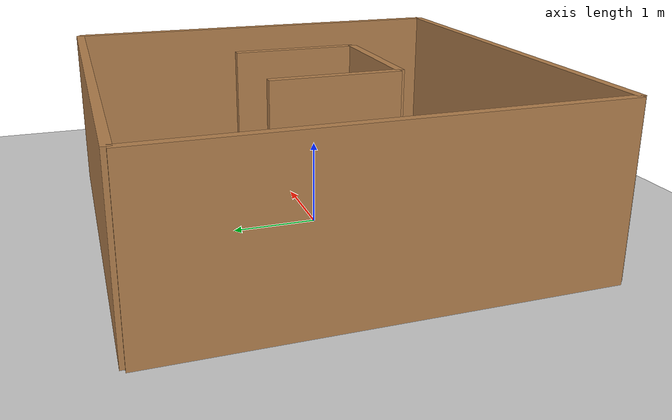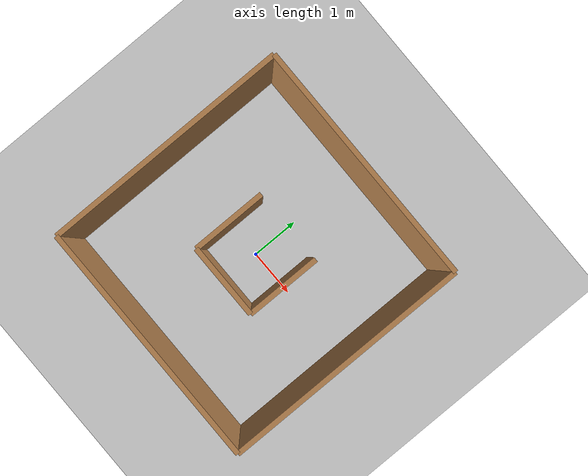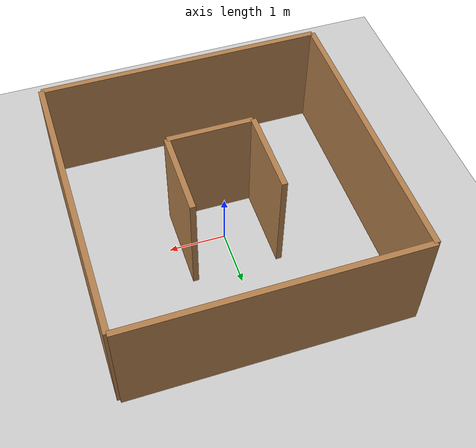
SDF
<?xml version="1.0" encoding="UTF-8"?>

<sdf version="1.6">
  <world name="default">
    <light name="sun" type="directional">
      <cast_shadows>1</cast_shadows>
      <pose frame="">0 0 10 0 -0 0</pose>
      <diffuse>0.8 0.8 0.8 1</diffuse>
      <specular>0.1 0.1 0.1 1</specular>
      <attenuation>
        <range>1000</range>
        <constant>0.9</constant>
        <linear>0.01</linear>
        <quadratic>0.001</quadratic>
      </attenuation>
      <direction>-0.5 0.5 -1</direction>
    </light>

    <!-- Ground Plane -->
    <model name='ground_plane'>
      <static>1</static>
      <link name='link'>
        <collision name='collision'>
          <geometry>
            <plane>
              <normal>0 0 1</normal>
              <size>100 100</size>
            </plane>
          </geometry>
          <surface>
            <friction>
              <ode>
                <mu>100</mu>
                <mu2>50</mu2>
              </ode>
              <torsional>
                <ode/>
              </torsional>
            </friction>
            <contact>
              <ode/>
            </contact>
            <bounce/>
          </surface>
          <max_contacts>10</max_contacts>
        </collision>
        <visual name='visual'>
          <cast_shadows>0</cast_shadows>
          <geometry>
            <plane>
              <normal>0 0 1</normal>
              <size>100 100</size>
            </plane>
          </geometry>
          <material>
            <script>
              <uri>file://media/materials/scripts/gazebo.material</uri>
              <name>Gazebo/Grey</name>
            </script>
          </material>
        </visual>
        <self_collide>0</self_collide>
        <kinematic>0</kinematic>
        <gravity>1</gravity>
      </link>
    </model>
    <gravity>0 0 -9.8</gravity>
    <magnetic_field>6e-06 2.3e-05 -4.2e-05</magnetic_field>
    <atmosphere type='adiabatic'/>
    <physics name='default_physics' default='0' type='ode'>
      <max_step_size>0.001</max_step_size>
      <real_time_factor>1</real_time_factor>
      <real_time_update_rate>0</real_time_update_rate>
      <ode>
        <solver>
          <thread_position_correction>1</thread_position_correction>
          <island_threads>500</island_threads>
        </solver>
      </ode>
    </physics>
    <scene>
      <ambient>0.4 0.4 0.4 1</ambient>
      <background>0.7 0.7 0.7 1</background>
      <shadows>0</shadows>
    </scene>
    <spherical_coordinates>
      <surface_model>EARTH_WGS84</surface_model>
      <latitude_deg>0</latitude_deg>
      <longitude_deg>0</longitude_deg>
      <elevation>0</elevation>
      <heading_deg>0</heading_deg>
    </spherical_coordinates>

  <!-- Outer Walls (5x5) -->
    <model name="outer_wall_1">
      <static>1</static>
      <link name="link">
        <pose>0 2.5 1 0 0 0</pose>
        <collision name="collision">
          <geometry>
            <box>
              <size>5 0.1 2</size>
            </box>
          </geometry>
        </collision>
        <visual name="visual">
          <geometry>
            <box>
              <size>5 0.1 2</size>
            </box>
          </geometry>
          <material>
            <script>
              <uri>file://media/materials/scripts/gazebo.material</uri>
              <name>Gazebo/Wood</name>
            </script>
          </material>
        </visual>
      </link>
    </model>

    <model name="outer_wall_2">
      <static>1</static>
      <link name="link">
        <pose>0 -2.5 1 0 0 0</pose>
        <collision name="collision">
          <geometry>
            <box>
              <size>5 0.1 2</size>
            </box>
          </geometry>
        </collision>
        <visual name="visual">
          <geometry>
            <box>
              <size>5 0.1 2</size>
            </box>
          </geometry>
          <material>
            <script>
              <uri>file://media/materials/scripts/gazebo.material</uri>
              <name>Gazebo/Wood</name>
            </script>
          </material>
        </visual>
      </link>
    </model>

    <model name="outer_wall_3">
      <static>1</static>
      <link name="link">
        <pose>2.5 0 1 0 0 1.5708</pose>
        <collision name="collision">
          <geometry>
            <box>
              <size>5 0.1 2</size>
            </box>
          </geometry>
        </collision>
        <visual name="visual">
          <geometry>
            <box>
              <size>5 0.1 2</size>
            </box>
          </geometry>
          <material>
            <script>
              <uri>file://media/materials/scripts/gazebo.material</uri>
              <name>Gazebo/Wood</name>
            </script>
          </material>
        </visual>
      </link>
    </model>

    <model name="outer_wall_4">
      <static>1</static>
      <link name="link">
        <pose>-2.5 0 1 0 0 1.5708</pose>
        <collision name="collision">
          <geometry>
            <box>
              <size>5 0.1 2</size>
            </box>
          </geometry>
        </collision>
        <visual name="visual">
          <geometry>
            <box>
              <size>5 0.1 2</size>
            </box>
          </geometry>
          <material>
            <script>
              <uri>file://media/materials/scripts/gazebo.material</uri>
              <name>Gazebo/Wood</name>
            </script>
          </material>
        </visual>
      </link>
    </model>

    <!-- Inner Walls (1.5x1.5) -->
    <model name="inner_wall_2">
      <static>1</static>
      <link name="link">
        <pose>0 -0.75 1 0 0 0</pose>
        <collision name="collision">
          <geometry>
            <box>
              <size>1.5 0.1 2</size>
            </box>
          </geometry>
        </collision>
        <visual name="visual">
          <geometry>
            <box>
              <size>1.5 0.1 2</size>
            </box>
          </geometry>
          <material>
            <script>
              <uri>file://media/materials/scripts/gazebo.material</uri>
              <name>Gazebo/Wood</name>
            </script>
          </material>
        </visual>
      </link>
    </model>

    <model name="inner_wall_3">
      <static>1</static>
      <link name="link">
        <pose>0.75 0 1 0 0 1.5708</pose>
        <collision name="collision">
          <geometry>
            <box>
              <size>1.5 0.1 2</size>
            </box>
          </geometry>
        </collision>
        <visual name="visual">
          <geometry>
            <box>
              <size>1.5 0.1 2</size>
            </box>
          </geometry>
          <material>
            <script>
              <uri>file://media/materials/scripts/gazebo.material</uri>
              <name>Gazebo/Wood</name>
            </script>
          </material>
        </visual>
      </link>
    </model>

    <model name="inner_wall_4">
      <static>1</static>
      <link name="link">
        <pose>-0.75 0 1 0 0 1.5708</pose>
        <collision name="collision">
          <geometry>
            <box>
              <size>1.5 0.1 2</size>
            </box>
          </geometry>
        </collision>
        <visual name="visual">
          <geometry>
            <box>
              <size>1.5 0.1 2</size>
            </box>
          </geometry>
          <material>
            <script>
              <uri>file://media/materials/scripts/gazebo.material</uri>
              <name>Gazebo/Wood</name>
            </script>
          </material>
        </visual>
      </link>
    </model>

    <gravity>0 0 -9.8</gravity>
    <magnetic_field>6e-06 2.3e-05 -4.2e-05</magnetic_field>
    <atmosphere type="adiabatic"/>
  </world>
</sdf>
